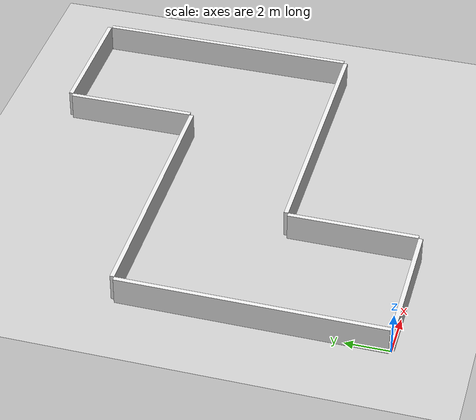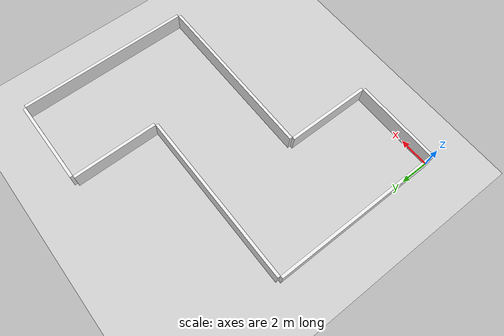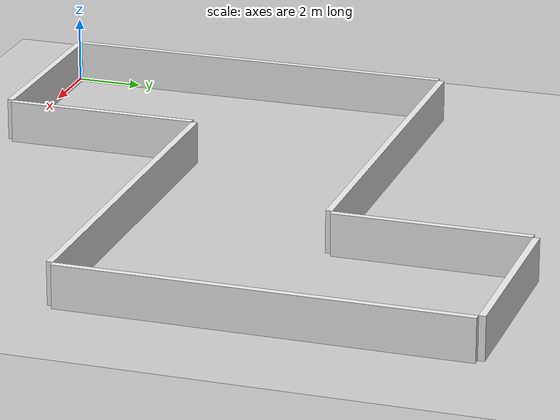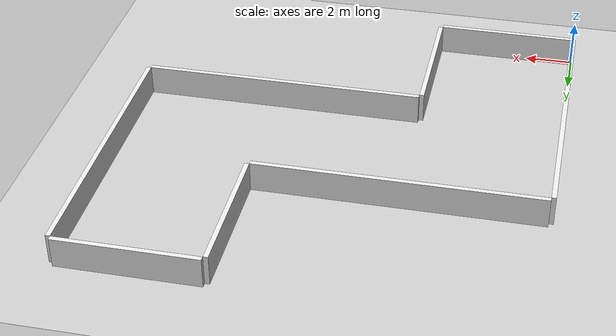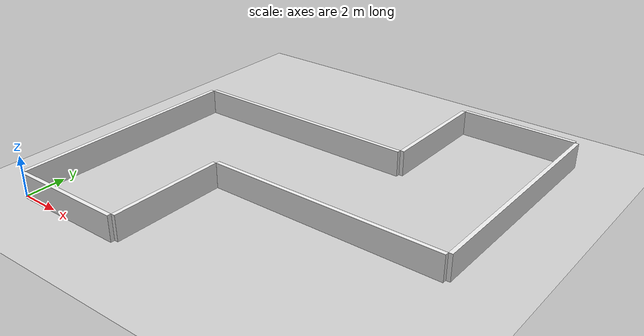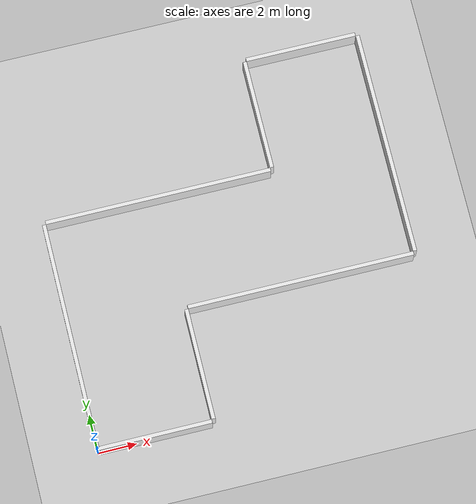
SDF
<sdf version='1.6'>
  <world name='default'>
    <!--plugin name='test' filename='libwd_plugin.so'/-->
    <scene>
      <shadows>0</shadows>
      <ambient>0.4 0.4 0.4 1</ambient>
      <background>0.7 0.7 0.7 1</background>
    </scene>
    <light name='sun' type='directional'>
      <cast_shadows>0</cast_shadows>
      <pose frame=''>0 0 5 0 -0 0</pose>
      <diffuse>0.8 0.8 0.8 1</diffuse>
      <specular>0.1 0.1 0.1 1</specular>
      <attenuation>
        <range>1000</range>
        <constant>0.9</constant>
        <linear>0.01</linear>
        <quadratic>0.001</quadratic>
      </attenuation>
      <direction>-0.5 0.5 -1</direction>
    </light>
    <physics name='default_physics' default='0' type='ode'>
      <max_step_size>0.001</max_step_size>
      <real_time_factor>1</real_time_factor>
      <real_time_update_rate>1000</real_time_update_rate>
    </physics>
    <scene>
      <ambient>0.4 0.4 0.4 1</ambient>
      <background>0.7 0.7 0.7 1</background>
      <shadows>1</shadows>
    </scene>
    <spherical_coordinates>
      <surface_model>EARTH_WGS84</surface_model>
      <latitude_deg>0</latitude_deg>
      <longitude_deg>0</longitude_deg>
      <elevation>0</elevation>
      <heading_deg>0</heading_deg>
    </spherical_coordinates>
    <model name='ground_plane'>
      <static>1</static>
      <link name='link'>
        <collision name='collision'>
          <geometry>
            <plane>
              <normal>0 0 1</normal>
              <size>100 100</size>
            </plane>
          </geometry>
          <surface>
            <friction>
              <ode>
                <mu>1</mu>
                <mu2>1</mu2>
              </ode>
              <torsional>
                <ode/>
              </torsional>
            </friction>
            <bounce/>
            <contact>
              <ode/>
            </contact>
          </surface>
          <max_contacts>10</max_contacts>
        </collision>
        <visual name='visual'>
          <cast_shadows>0</cast_shadows>
          <geometry>
            <plane>
              <normal>0 0 1</normal>
              <size>100 100</size>
            </plane>
          </geometry>
          <material>
            <script>
              <uri>file://media/materials/scripts/gazebo.material</uri>
              <name>Gazebo/Grey</name>
            </script>
          </material>
        </visual>
        <velocity_decay>
          <linear>0</linear>
          <angular>0</angular>
        </velocity_decay>
        <self_collide>0</self_collide>
        <kinematic>0</kinematic>
        <gravity>1</gravity>
      </link>
    </model>
    <gravity>0 0 -9.8</gravity>
    <magnetic_field>6e-06 2.3e-05 -4.2e-05</magnetic_field>
    <atmosphere type='adiabatic'/>
    <model name='office_env_w_complete'>
      <pose frame=''>0 0 0 0 -0 0</pose>
      <link name='Wall_0'>
        <pose frame=''>3 0 0 0 -0 0</pose>
        <visual name='Wall_0_Visual_0'>
          <pose frame=''>0 0 0 0 -0 0</pose>
          <geometry>
            <box>
              <size>5.8 0.2 2.5</size>
            </box>
          </geometry>
          <material>
            <script>
              <uri>model://office_env_w/materials/scripts</uri>
              <uri>model://office_env_w/materials/textures</uri>
              <name>wall_white</name>
            </script>
          </material>
          <meta>
            <layer>0</layer>
          </meta>
        </visual>
        <collision name='Wall_0_Collision_0'>
          <geometry>
            <box>
              <size>5.8 0.2 2.5</size>
            </box>
          </geometry>
          <pose frame=''>0 0 0 0 -0 0</pose>
          <max_contacts>10</max_contacts>
          <surface>
            <contact>
              <ode/>
            </contact>
            <bounce/>
            <friction>
              <torsional>
                <ode/>
              </torsional>
              <ode/>
            </friction>
          </surface>
        </collision>
        <self_collide>0</self_collide>
        <kinematic>0</kinematic>
      </link>

      <link name='Wall_1'>
        <pose frame=''>6 3 0 0 -0 1.57</pose>
        <visual name='Wall_1_Visual_0'>
          <pose frame=''>0 0 0 0 -0 0</pose>
          <geometry>
            <box>
              <size>5.8 0.2 2.5</size>
            </box>
          </geometry>
          <material>
            <script>
              <uri>model://office_env_w/materials/scripts</uri>
              <uri>model://office_env_w/materials/textures</uri>
              <name>wall_white</name>
            </script>
          </material>
          <meta>
            <layer>0</layer>
          </meta>
        </visual>
        <collision name='Wall_1_Collision_0'>
          <geometry>
            <box>
              <size>5.8 0.2 2.5</size>
            </box>
          </geometry>
          <pose frame=''>0 0 0 0 -0 0</pose>
          <max_contacts>10</max_contacts>
          <surface>
            <contact>
              <ode/>
            </contact>
            <bounce/>
            <friction>
              <torsional>
                <ode/>
              </torsional>
              <ode/>
            </friction>
          </surface>
        </collision>
        <self_collide>0</self_collide>
        <kinematic>0</kinematic>
      </link>

      <link name='Wall_2'>
        <pose frame=''>12 6 0 0 -0 0</pose>
        <visual name='Wall_2_Visual_0'>
          <pose frame=''>0 0 0 0 -0 0</pose>
          <geometry>
            <box>
              <size>11.8 0.2 2.5</size>
            </box>
          </geometry>
          <material>
            <script>
              <uri>model://office_env_w/materials/scripts</uri>
              <uri>model://office_env_w/materials/textures</uri>
              <name>wall_white</name>
            </script>
          </material>
          <meta>
            <layer>0</layer>
          </meta>
        </visual>
        <collision name='Wall_2_Collision_0'>
          <geometry>
            <box>
              <size>11.8 0.2 2.5</size>
            </box>
          </geometry>
          <pose frame=''>0 0 0 0 -0 0</pose>
          <max_contacts>10</max_contacts>
          <surface>
            <contact>
              <ode/>
            </contact>
            <bounce/>
            <friction>
              <torsional>
                <ode/>
              </torsional>
              <ode/>
            </friction>
          </surface>
        </collision>
        <self_collide>0</self_collide>
        <kinematic>0</kinematic>
      </link>

      <link name='Wall_3'>
        <pose frame=''>18 12 0 0 -0 1.57</pose>
        <visual name='Wall_3_Visual_0'>
          <pose frame=''>0 0 0 0 -0 0</pose>
          <geometry>
            <box>
              <size>11.8 0.2 2.5</size>
            </box>
          </geometry>
          <material>
            <script>
              <uri>model://office_env_w/materials/scripts</uri>
              <uri>model://office_env_w/materials/textures</uri>
              <name>wall_white</name>
            </script>
          </material>
          <meta>
            <layer>0</layer>
          </meta>
        </visual>
        <collision name='Wall_3_Collision_0'>
          <geometry>
            <box>
              <size>11.8 0.2 2.5</size>
            </box>
          </geometry>
          <pose frame=''>0 0 0 0 -0 0</pose>
          <max_contacts>10</max_contacts>
          <surface>
            <contact>
              <ode/>
            </contact>
            <bounce/>
            <friction>
              <torsional>
                <ode/>
              </torsional>
              <ode/>
            </friction>
          </surface>
        </collision>
        <self_collide>0</self_collide>
        <kinematic>0</kinematic>
      </link>

      <link name='Wall_4'>
        <pose frame=''>15 18 0 0 -0 0</pose>
        <visual name='Wall_4_Visual_0'>
          <pose frame=''>0 0 0 0 -0 0</pose>
          <geometry>
            <box>
              <size>5.8 0.2 2.5</size>
            </box>
          </geometry>
          <material>
            <script>
              <uri>model://office_env_w/materials/scripts</uri>
              <uri>model://office_env_w/materials/textures</uri>
              <name>wall_white</name>
            </script>
          </material>
          <meta>
            <layer>0</layer>
          </meta>
        </visual>
        <collision name='Wall_4_Collision_0'>
          <geometry>
            <box>
              <size>5.8 0.2 2.5</size>
            </box>
          </geometry>
          <pose frame=''>0 0 0 0 -0 0</pose>
          <max_contacts>10</max_contacts>
          <surface>
            <contact>
              <ode/>
            </contact>
            <bounce/>
            <friction>
              <torsional>
                <ode/>
              </torsional>
              <ode/>
            </friction>
          </surface>
        </collision>
        <self_collide>0</self_collide>
        <kinematic>0</kinematic>
      </link>

      <link name='Wall_5'>
        <pose frame=''>12 15 0 0 -0 1.57</pose>
        <visual name='Wall_5_Visual_0'>
          <pose frame=''>0 0 0 0 -0 0</pose>
          <geometry>
            <box>
              <size>5.8 0.2 2.5</size>
            </box>
          </geometry>
          <material>
            <script>
              <uri>model://office_env_w/materials/scripts</uri>
              <uri>model://office_env_w/materials/textures</uri>
              <name>wall_white</name>
            </script>
          </material>
          <meta>
            <layer>0</layer>
          </meta>
        </visual>
        <collision name='Wall_5_Collision_0'>
          <geometry>
            <box>
              <size>5.8 0.2 2.5</size>
            </box>
          </geometry>
          <pose frame=''>0 0 0 0 -0 0</pose>
          <max_contacts>10</max_contacts>
          <surface>
            <contact>
              <ode/>
            </contact>
            <bounce/>
            <friction>
              <torsional>
                <ode/>
              </torsional>
              <ode/>
            </friction>
          </surface>
        </collision>
        <self_collide>0</self_collide>
        <kinematic>0</kinematic>
      </link>

      <link name='Wall_6'>
        <pose frame=''>6 12 0 0 -0 0</pose>
        <visual name='Wall_6_Visual_0'>
          <pose frame=''>0 0 0 0 -0 0</pose>
          <geometry>
            <box>
              <size>11.8 0.2 2.5</size>
            </box>
          </geometry>
          <material>
            <script>
              <uri>model://office_env_w/materials/scripts</uri>
              <uri>model://office_env_w/materials/textures</uri>
              <name>wall_white</name>
            </script>
          </material>
          <meta>
            <layer>0</layer>
          </meta>
        </visual>
        <collision name='Wall_6_Collision_0'>
          <geometry>
            <box>
              <size>11.8 0.2 2.5</size>
            </box>
          </geometry>
          <pose frame=''>0 0 0 0 -0 0</pose>
          <max_contacts>10</max_contacts>
          <surface>
            <contact>
              <ode/>
            </contact>
            <bounce/>
            <friction>
              <torsional>
                <ode/>
              </torsional>
              <ode/>
            </friction>
          </surface>
        </collision>
        <self_collide>0</self_collide>
        <kinematic>0</kinematic>
      </link>

      <link name='Wall_7'>
        <pose frame=''>0 6 0 0 -0 1.57</pose>
        <visual name='Wall_7_Visual_0'>
          <pose frame=''>0 0 0 0 -0 0</pose>
          <geometry>
            <box>
              <size>11.8 0.2 2.5</size>
            </box>
          </geometry>
          <material>
            <script>
              <uri>model://office_env_w/materials/scripts</uri>
              <uri>model://office_env_w/materials/textures</uri>
              <name>wall_white</name>
            </script>
          </material>
          <meta>
            <layer>0</layer>
          </meta>
        </visual>
        <collision name='Wall_7_Collision_0'>
          <geometry>
            <box>
              <size>11.8 0.2 2.5</size>
            </box>
          </geometry>
          <pose frame=''>0 0 0 0 -0 0</pose>
          <max_contacts>10</max_contacts>
          <surface>
            <contact>
              <ode/>
            </contact>
            <bounce/>
            <friction>
              <torsional>
                <ode/>
              </torsional>
              <ode/>
            </friction>
          </surface>
        </collision>
        <self_collide>0</self_collide>
        <kinematic>0</kinematic>
      </link>

      <static>1</static>
      <allow_auto_disable>1</allow_auto_disable>
</model>
</world>
</sdf>
